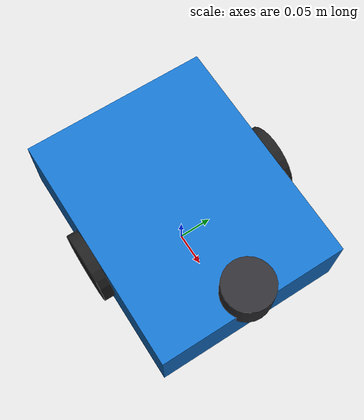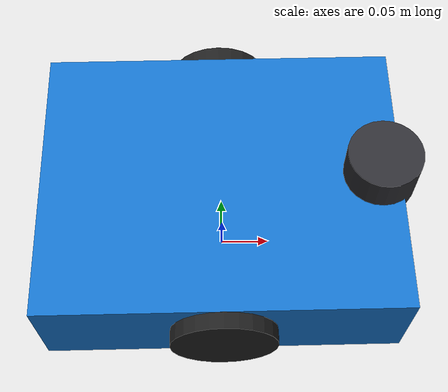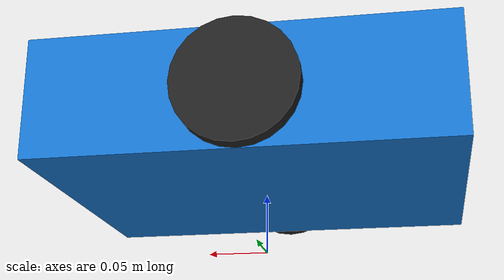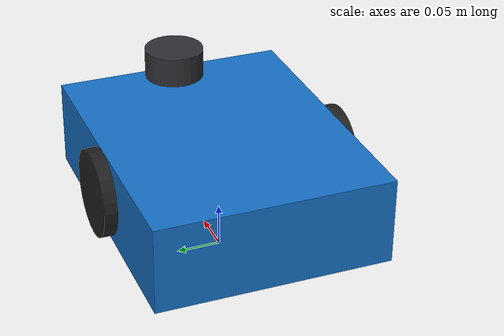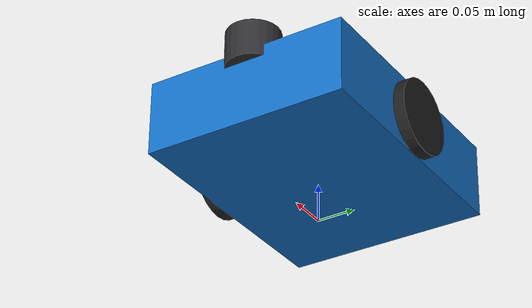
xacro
<?xml version="1.0"?>
<robot xmlns:xacro="http://www.ros.org/wiki/xacro" name="morph">
  <xacro:property name="base_length" value="0.34"/>
  <xacro:property name="base_width" value="0.27"/>
  <xacro:property name="base_height" value="0.10"/>
  <xacro:property name="base_mass" value="6.0"/>

  <xacro:property name="wheel_radius" value="0.05"/>
  <xacro:property name="wheel_width" value="0.03"/>
  <xacro:property name="wheel_x" value="0.0"/>
  <xacro:property name="wheel_y" value="0.135"/>
  <xacro:property name="wheel_z" value="0.05"/>

  <xacro:property name="laser_x" value="0.15"/>
  <xacro:property name="laser_z" value="0.11"/>

  <link name="base_footprint"/>

  <joint name="base_footprint_joint" type="fixed">
    <parent link="base_footprint"/>
    <child link="base_link"/>
    <origin xyz="0 0 ${wheel_radius}"/>
  </joint>

  <link name="base_link">
    <visual>
      <origin xyz="0 0 ${base_height / 2.0}"/>
      <geometry>
        <box size="${base_length} ${base_width} ${base_height}"/>
      </geometry>
      <material name="morph_blue">
        <color rgba="0.08 0.44 0.78 1.0"/>
      </material>
    </visual>
    <collision>
      <origin xyz="0 0 ${base_height / 2.0}"/>
      <geometry>
        <box size="${base_length} ${base_width} ${base_height}"/>
      </geometry>
    </collision>
    <inertial>
      <origin xyz="0 0 ${base_height / 2.0}"/>
      <mass value="${base_mass}"/>
      <inertia ixx="0.08" ixy="0.0" ixz="0.0" iyy="0.12" iyz="0.0" izz="0.16"/>
    </inertial>
  </link>

  <link name="left_wheel_link">
    <visual>
      <origin rpy="1.57079632679 0 0"/>
      <geometry>
        <cylinder radius="${wheel_radius}" length="${wheel_width}"/>
      </geometry>
      <material name="dark">
        <color rgba="0.12 0.12 0.12 1.0"/>
      </material>
    </visual>
  </link>

  <joint name="left_wheel_joint" type="continuous">
    <parent link="base_link"/>
    <child link="left_wheel_link"/>
    <origin xyz="${wheel_x} ${wheel_y} ${wheel_z}"/>
    <axis xyz="0 1 0"/>
  </joint>

  <link name="right_wheel_link">
    <visual>
      <origin rpy="1.57079632679 0 0"/>
      <geometry>
        <cylinder radius="${wheel_radius}" length="${wheel_width}"/>
      </geometry>
      <material name="dark"/>
    </visual>
  </link>

  <joint name="right_wheel_joint" type="continuous">
    <parent link="base_link"/>
    <child link="right_wheel_link"/>
    <origin xyz="${wheel_x} ${-wheel_y} ${wheel_z}"/>
    <axis xyz="0 1 0"/>
  </joint>

  <link name="laser">
    <visual>
      <geometry>
        <cylinder radius="0.035" length="0.05"/>
      </geometry>
      <material name="laser_black">
        <color rgba="0.18 0.18 0.2 1.0"/>
      </material>
    </visual>
  </link>

  <joint name="laser_joint" type="fixed">
    <parent link="base_link"/>
    <child link="laser"/>
    <origin xyz="${laser_x} 0 ${laser_z}"/>
  </joint>
</robot>
